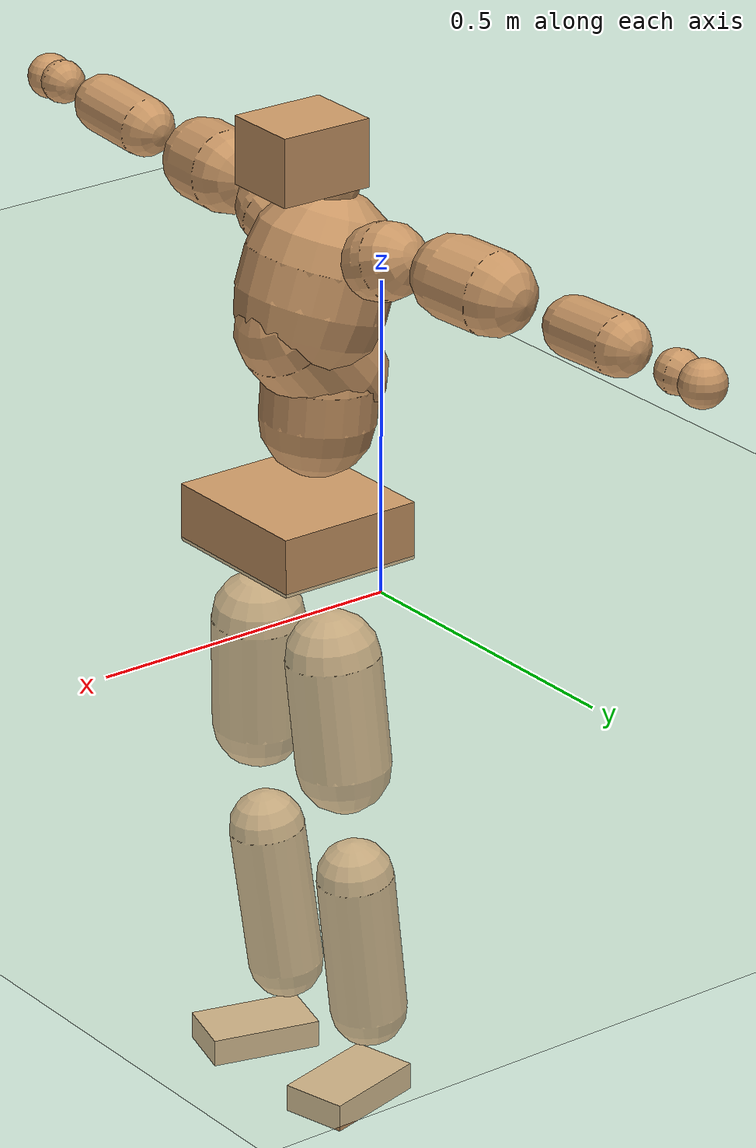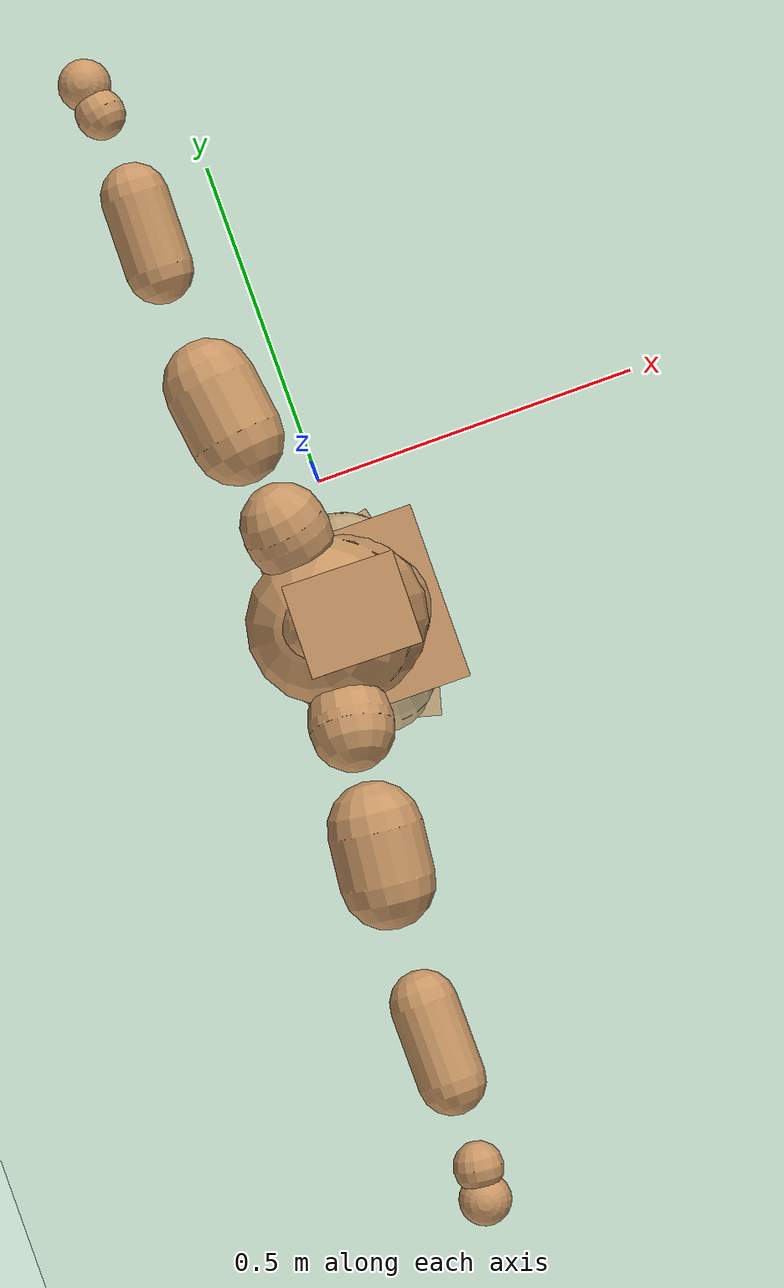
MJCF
<mujoco model="humanoid">
  <compiler coordinate="local" angle="radian"/>
  <default>
    <joint damping="0.0" armature="0.01" stiffness="0.0" limited="true"/>
    <geom conaffinity="1" condim="3" contype="7" margin="0.001" rgba="0.8 0.6 .4 1"/>
  </default>
  <asset>
    <texture type="skybox" builtin="gradient" rgb1=".4 .5 .6" rgb2="0 0 0" width="100" height="100"/>
    <texture builtin="flat" height="1278" mark="cross" markrgb="1 1 1" name="texgeom" random="0.01" rgb1="0.8 0.6 0.4" rgb2="0.8 0.6 0.4" type="cube" width="127"/>
    <texture builtin="checker" height="100" name="texplane" rgb1="0 0 0" rgb2="0.8 0.8 0.8" type="2d" width="100"/>
    <material name="MatPlane" reflectance="0.5" shininess="1" specular="1" texrepeat="60 60" texture="texplane"/>
    <material name="geom" texture="texgeom" texuniform="true"/>
  </asset>
  <worldbody>
    <light cutoff="100" diffuse="1 1 1" dir="-0 0 -1.3" directional="true" exponent="1" pos="0 0 1.3" specular=".1 .1 .1"/>
    <geom conaffinity="1" condim="3" name="floor" pos="0 0 0" rgba="0.8 0.9 0.8 1" size="100 100 .2" type="plane" material="MatPlane"/>
    <body name="Pelvis" pos="0.0002 -0.2171 0.0535">
      <freejoint name="Pelvis"/>
      <geom type="box" contype="1" conaffinity="1" density="5359.375059" pos="-0.0048 0.0000 -0.0142" size="0.1207 0.1347 0.047" quat="1.0000 0.0000 0.0000 -0.0007" name="Pelvis"/>
      <body name="L_Hip" pos="0.0056 0.0879 -0.101">
        <joint name="L_Hip_x" type="hinge" pos="0 0 0" axis="1 0 0" stiffness="1600" damping="160" armature="0.02" range="-180.0000 180.0000"/>
        <joint name="L_Hip_y" type="hinge" pos="0 0 0" axis="0 1 0" stiffness="1600" damping="160" armature="0.02" range="-180.0000 180.0000"/>
        <joint name="L_Hip_z" type="hinge" pos="0 0 0" axis="0 0 1" stiffness="1600" damping="160" armature="0.02" range="-180.0000 180.0000"/>
        <geom type="capsule" contype="1" conaffinity="1" density="2040.816327" size="0.0746" fromto="-0.0066 0.0069 -0.1042 -0.0182 0.0189 -0.2875" name="L_Hip"/>
        <body name="L_Knee" pos="-0.0247 0.0258 -0.3916">
          <joint name="L_Knee_x" type="hinge" pos="0 0 0" axis="1 0 0" stiffness="1600" damping="160" armature="0.02" range="-180.0000 180.0000"/>
          <joint name="L_Knee_y" type="hinge" pos="0 0 0" axis="0 1 0" stiffness="1600" damping="160" armature="0.02" range="-180.0000 180.0000"/>
          <joint name="L_Knee_z" type="hinge" pos="0 0 0" axis="0 0 1" stiffness="1600" damping="160" armature="0.02" range="-180.0000 180.0000"/>
          <geom type="capsule" contype="1" conaffinity="1" density="1234.567901" size="0.061" fromto="-0.0116 -0.0022 -0.0902 -0.0427 -0.0082 -0.3325" name="L_Knee"/>
          <body name="L_Ankle" pos="-0.0543 -0.0104 -0.4226">
            <joint name="L_Ankle_x" type="hinge" pos="0 0 0" axis="1 0 0" stiffness="1600" damping="160" armature="0.02" range="-180.0000 180.0000"/>
            <joint name="L_Ankle_y" type="hinge" pos="0 0 0" axis="0 1 0" stiffness="1600" damping="160" armature="0.02" range="-180.0000 180.0000"/>
            <joint name="L_Ankle_z" type="hinge" pos="0 0 0" axis="0 0 1" stiffness="1600" damping="160" armature="0.02" range="-180.0000 180.0000"/>
            <geom type="box" contype="1" conaffinity="1" density="999.999978" pos="0.0601 0.0152 -0.0303" size="0.0881 0.0531 0.0223" quat="0.9923 0.0000 0.0000 0.1236" name="L_Ankle"/>
            <body name="L_Toe" pos="0.1203 0.0304 -0.0606">
              <joint name="L_Toe_x" type="hinge" pos="0 0 0" axis="1 0 0" stiffness="1000" damping="100" armature="0.02" range="-180.0000 180.0000"/>
              <joint name="L_Toe_y" type="hinge" pos="0 0 0" axis="0 1 0" stiffness="1000" damping="100" armature="0.02" range="-180.0000 180.0000"/>
              <joint name="L_Toe_z" type="hinge" pos="0 0 0" axis="0 0 1" stiffness="1000" damping="100" armature="0.02" range="-180.0000 180.0000"/>
              <geom type="box" contype="1" conaffinity="1" density="8299169.688137" pos="0.0000 0.0000 0.0308" size="0.001 0.0026 0.0011" quat="0.9916 0.0000 0.0000 0.1293" name="L_Toe"/>
            </body>
          </body>
        </body>
      </body>
      <body name="R_Hip" pos="0.0084 -0.0854 -0.1026">
        <joint name="R_Hip_x" type="hinge" pos="0 0 0" axis="1 0 0" stiffness="1600" damping="160" armature="0.02" range="-180.0000 180.0000"/>
        <joint name="R_Hip_y" type="hinge" pos="0 0 0" axis="0 1 0" stiffness="1600" damping="160" armature="0.02" range="-180.0000 180.0000"/>
        <joint name="R_Hip_z" type="hinge" pos="0 0 0" axis="0 0 1" stiffness="1600" damping="160" armature="0.02" range="-180.0000 180.0000"/>
        <geom type="capsule" contype="1" conaffinity="1" density="2040.816327" size="0.0737" fromto="-0.0068 -0.0089 -0.1031 -0.0191 -0.0253 -0.2913" name="R_Hip"/>
        <body name="R_Knee" pos="-0.0259 -0.0342 -0.3943">
          <joint name="R_Knee_x" type="hinge" pos="0 0 0" axis="1 0 0" stiffness="1600" damping="160" armature="0.02" range="-180.0000 180.0000"/>
          <joint name="R_Knee_y" type="hinge" pos="0 0 0" axis="0 1 0" stiffness="1600" damping="160" armature="0.02" range="-180.0000 180.0000"/>
          <joint name="R_Knee_z" type="hinge" pos="0 0 0" axis="0 0 1" stiffness="1600" damping="160" armature="0.02" range="-180.0000 180.0000"/>
          <geom type="capsule" contype="1" conaffinity="1" density="1234.567901" size="0.0606" fromto="-0.0113 0.0025 -0.0898 -0.0419 0.0094 -0.3339" name="R_Knee"/>
          <body name="R_Ankle" pos="-0.0532 0.012 -0.4237">
            <joint name="R_Ankle_x" type="hinge" pos="0 0 0" axis="1 0 0" stiffness="1600" damping="160" armature="0.02" range="-180.0000 180.0000"/>
            <joint name="R_Ankle_y" type="hinge" pos="0 0 0" axis="0 1 0" stiffness="1600" damping="160" armature="0.02" range="-180.0000 180.0000"/>
            <joint name="R_Ankle_z" type="hinge" pos="0 0 0" axis="0 0 1" stiffness="1600" damping="160" armature="0.02" range="-180.0000 180.0000"/>
            <geom type="box" contype="1" conaffinity="1" density="999.999975" pos="0.0624 -0.0167 -0.0262" size="0.0889 0.0517 0.0222" quat="0.9914 0.0000 0.0000 -0.1307" name="R_Ankle"/>
            <body name="R_Toe" pos="0.1248 -0.0335 -0.0524">
              <joint name="R_Toe_x" type="hinge" pos="0 0 0" axis="1 0 0" stiffness="1000" damping="100" armature="0.02" range="-180.0000 180.0000"/>
              <joint name="R_Toe_y" type="hinge" pos="0 0 0" axis="0 1 0" stiffness="1000" damping="100" armature="0.02" range="-180.0000 180.0000"/>
              <joint name="R_Toe_z" type="hinge" pos="0 0 0" axis="0 0 1" stiffness="1000" damping="100" armature="0.02" range="-180.0000 180.0000"/>
              <geom type="box" contype="1" conaffinity="1" density="7840720.332085" pos="0.0000 0.0000 0.0283" size="0.001 0.0025 0.0012" quat="0.9926 0.0000 0.0000 -0.1214" name="R_Toe"/>
            </body>
          </body>
        </body>
      </body>
      <body name="Torso" pos="-0.0431 -0.0025 0.1182">
        <joint name="Torso_x" type="hinge" pos="0 0 0" axis="1 0 0" stiffness="2000" damping="200" armature="0.02" range="-180.0000 180.0000"/>
        <joint name="Torso_y" type="hinge" pos="0 0 0" axis="0 1 0" stiffness="2000" damping="200" armature="0.02" range="-180.0000 180.0000"/>
        <joint name="Torso_z" type="hinge" pos="0 0 0" axis="0 0 1" stiffness="2000" damping="200" armature="0.02" range="-180.0000 180.0000"/>
        <geom type="capsule" contype="1" conaffinity="1" density="2040.816327" size="0.0912" fromto="-0.0068 0.0019 0.0909 -0.0021 0.0006 0.0279" name="Torso"/>
        <body name="Spine" pos="-0.0089 0.0024 0.1188">
          <joint name="Spine_x" type="hinge" pos="0 0 0" axis="1 0 0" stiffness="2000" damping="200" armature="0.02" range="-180.0000 180.0000"/>
          <joint name="Spine_y" type="hinge" pos="0 0 0" axis="0 1 0" stiffness="2000" damping="200" armature="0.02" range="-180.0000 180.0000"/>
          <joint name="Spine_z" type="hinge" pos="0 0 0" axis="0 0 1" stiffness="2000" damping="200" armature="0.02" range="-180.0000 180.0000"/>
          <geom type="capsule" contype="1" conaffinity="1" density="2040.816327" size="0.0898" fromto="0.0572 0.0035 0.0691 -0.0162 -0.0010 -0.0195" name="Spine"/>
          <body name="Chest" pos="0.041 0.0025 0.0496">
            <joint name="Chest_x" type="hinge" pos="0 0 0" axis="1 0 0" stiffness="2000" damping="200" armature="0.02" range="-180.0000 180.0000"/>
            <joint name="Chest_y" type="hinge" pos="0 0 0" axis="0 1 0" stiffness="2000" damping="200" armature="0.02" range="-180.0000 180.0000"/>
            <joint name="Chest_z" type="hinge" pos="0 0 0" axis="0 0 1" stiffness="2000" damping="200" armature="0.02" range="-180.0000 180.0000"/>
            <geom type="capsule" contype="1" conaffinity="1" density="2040.816327" size="0.1179" fromto="-0.0378 0.0003 0.1117 -0.0174 0.0001 0.0513" name="Chest"/>
            <body name="Neck" pos="-0.0703 0.001 0.2229">
              <joint name="Neck_x" type="hinge" pos="0 0 0" axis="1 0 0" stiffness="1000" damping="100" armature="0.02" range="-180.0000 180.0000"/>
              <joint name="Neck_y" type="hinge" pos="0 0 0" axis="0 1 0" stiffness="1000" damping="100" armature="0.02" range="-180.0000 180.0000"/>
              <joint name="Neck_z" type="hinge" pos="0 0 0" axis="0 0 1" stiffness="1000" damping="100" armature="0.02" range="-180.0000 180.0000"/>
              <geom type="capsule" contype="1" conaffinity="1" density="1000" size="0.0448" fromto="0.0302 -0.0019 0.0331 0.0128 -0.0008 0.0140" name="Neck"/>
              <body name="Head" pos="0.043 -0.0027 0.047">
                <joint name="Head_x" type="hinge" pos="0 0 0" axis="1 0 0" stiffness="1000" damping="100" armature="0.02" range="-180.0000 180.0000"/>
                <joint name="Head_y" type="hinge" pos="0 0 0" axis="0 1 0" stiffness="1000" damping="100" armature="0.02" range="-180.0000 180.0000"/>
                <joint name="Head_z" type="hinge" pos="0 0 0" axis="0 0 1" stiffness="1000" damping="100" armature="0.02" range="-180.0000 180.0000"/>
                <geom type="box" contype="1" conaffinity="1" density="2250.000039" pos="0.0225 -0.0004 0.0245" size="0.0765 0.0636 0.0543" quat="1.0000 0.0000 0.0000 -0.0082" name="Head"/>
              </body>
            </body>
            <body name="L_Thorax" pos="-0.0451 0.0909 0.1338">
              <joint name="L_Thorax_x" type="hinge" pos="0 0 0" axis="1 0 0" stiffness="1000" damping="100" armature="0.02" range="-180.0000 180.0000"/>
              <joint name="L_Thorax_y" type="hinge" pos="0 0 0" axis="0 1 0" stiffness="1000" damping="100" armature="0.02" range="-180.0000 180.0000"/>
              <joint name="L_Thorax_z" type="hinge" pos="0 0 0" axis="0 0 1" stiffness="1000" damping="100" armature="0.02" range="-180.0000 180.0000"/>
              <geom type="capsule" contype="1" conaffinity="1" density="1000" size="0.0602" fromto="-0.0089 0.0555 0.0216 -0.0060 0.0378 0.0147" name="L_Thorax"/>
              <body name="L_Shoulder" pos="-0.0149 0.0933 0.0363">
                <joint name="L_Shoulder_x" type="hinge" pos="0 0 0" axis="1 0 0" stiffness="1000" damping="100" armature="0.02" range="-720.0000 720.0000"/>
                <joint name="L_Shoulder_y" type="hinge" pos="0 0 0" axis="0 1 0" stiffness="1000" damping="100" armature="0.02" range="-720.0000 720.0000"/>
                <joint name="L_Shoulder_z" type="hinge" pos="0 0 0" axis="0 0 1" stiffness="1000" damping="100" armature="0.02" range="-720.0000 720.0000"/>
                <geom type="capsule" contype="1" conaffinity="1" density="1000" size="0.0654" fromto="-0.0130 0.0944 -0.0035 -0.0240 0.1746 -0.0066" name="L_Shoulder"/>
                <body name="L_Elbow" pos="-0.0369 0.2691 -0.0101">
                  <joint name="L_Elbow_x" type="hinge" pos="0 0 0" axis="1 0 0" stiffness="1000" damping="100" armature="0.02" range="-720.0000 720.0000"/>
                  <joint name="L_Elbow_y" type="hinge" pos="0 0 0" axis="0 1 0" stiffness="1000" damping="100" armature="0.02" range="-720.0000 720.0000"/>
                  <joint name="L_Elbow_z" type="hinge" pos="0 0 0" axis="0 0 1" stiffness="1000" damping="100" armature="0.02" range="-720.0000 720.0000"/>
                  <geom type="capsule" contype="1" conaffinity="1" density="1000" size="0.0467" fromto="0.0011 0.0766 0.0037 0.0025 0.1819 0.0089" name="L_Elbow"/>
                  <body name="L_Wrist" pos="0.0036 0.2585 0.0126">
                    <joint name="L_Wrist_x" type="hinge" pos="0 0 0" axis="1 0 0" stiffness="600" damping="60" armature="0.02" range="-180.0000 180.0000"/>
                    <joint name="L_Wrist_y" type="hinge" pos="0 0 0" axis="0 1 0" stiffness="600" damping="60" armature="0.02" range="-180.0000 180.0000"/>
                    <joint name="L_Wrist_z" type="hinge" pos="0 0 0" axis="0 0 1" stiffness="600" damping="60" armature="0.02" range="-180.0000 180.0000"/>
                    <geom type="capsule" contype="1" conaffinity="1" density="1000" size="0.0344" fromto="-0.0072 0.0439 -0.0052 -0.0076 0.0459 -0.0054" name="L_Wrist"/>
                    <body name="L_Hand" pos="-0.0148 0.0899 -0.0106">
                      <joint name="L_Hand_x" type="hinge" pos="0 0 0" axis="1 0 0" stiffness="600" damping="60" armature="0.02" range="-180.0000 180.0000"/>
                      <joint name="L_Hand_y" type="hinge" pos="0 0 0" axis="0 1 0" stiffness="600" damping="60" armature="0.02" range="-180.0000 180.0000"/>
                      <joint name="L_Hand_z" type="hinge" pos="0 0 0" axis="0 0 1" stiffness="600" damping="60" armature="0.02" range="-180.0000 180.0000"/>
                      <geom type="sphere" contype="1" conaffinity="1" density="1000" size="0.0364" pos="0.0000 0.0000 0.0000" name="L_Hand"/>
                    </body>
                  </body>
                </body>
              </body>
            </body>
            <body name="R_Thorax" pos="-0.0502 -0.0908 0.1322">
              <joint name="R_Thorax_x" type="hinge" pos="0 0 0" axis="1 0 0" stiffness="1000" damping="100" armature="0.02" range="-180.0000 180.0000"/>
              <joint name="R_Thorax_y" type="hinge" pos="0 0 0" axis="0 1 0" stiffness="1000" damping="100" armature="0.02" range="-180.0000 180.0000"/>
              <joint name="R_Thorax_z" type="hinge" pos="0 0 0" axis="0 0 1" stiffness="1000" damping="100" armature="0.02" range="-180.0000 180.0000"/>
              <geom type="capsule" contype="1" conaffinity="1" density="1000" size="0.0596" fromto="-0.0079 -0.0555 0.0202 -0.0060 -0.0425 0.0155" name="R_Thorax"/>
              <body name="R_Shoulder" pos="-0.0139 -0.098 0.0356">
                <joint name="R_Shoulder_x" type="hinge" pos="0 0 0" axis="1 0 0" stiffness="1000" damping="100" armature="0.02" range="-720.0000 720.0000"/>
                <joint name="R_Shoulder_y" type="hinge" pos="0 0 0" axis="0 1 0" stiffness="1000" damping="100" armature="0.02" range="-720.0000 720.0000"/>
                <joint name="R_Shoulder_z" type="hinge" pos="0 0 0" axis="0 0 1" stiffness="1000" damping="100" armature="0.02" range="-720.0000 720.0000"/>
                <geom type="capsule" contype="1" conaffinity="1" density="1000" size="0.0665" fromto="-0.0102 -0.0959 -0.0046 -0.0181 -0.1695 -0.0081" name="R_Shoulder"/>
                <body name="R_Elbow" pos="-0.0284 -0.2654 -0.0127">
                  <joint name="R_Elbow_x" type="hinge" pos="0 0 0" axis="1 0 0" stiffness="1000" damping="100" armature="0.02" range="-720.0000 720.0000"/>
                  <joint name="R_Elbow_y" type="hinge" pos="0 0 0" axis="0 1 0" stiffness="1000" damping="100" armature="0.02" range="-720.0000 720.0000"/>
                  <joint name="R_Elbow_z" type="hinge" pos="0 0 0" axis="0 0 1" stiffness="1000" damping="100" armature="0.02" range="-720.0000 720.0000"/>
                  <geom type="capsule" contype="1" conaffinity="1" density="1000" size="0.047" fromto="0.0008 -0.0768 0.0049 0.0021 -0.1882 0.0121" name="R_Elbow"/>
                  <body name="R_Wrist" pos="0.0029 -0.265 0.017">
                    <joint name="R_Wrist_x" type="hinge" pos="0 0 0" axis="1 0 0" stiffness="600" damping="60" armature="0.02" range="-180.0000 180.0000"/>
                    <joint name="R_Wrist_y" type="hinge" pos="0 0 0" axis="0 1 0" stiffness="600" damping="60" armature="0.02" range="-180.0000 180.0000"/>
                    <joint name="R_Wrist_z" type="hinge" pos="0 0 0" axis="0 0 1" stiffness="600" damping="60" armature="0.02" range="-180.0000 180.0000"/>
                    <geom type="capsule" contype="1" conaffinity="1" density="1000" size="0.035" fromto="-0.0059 -0.0440 -0.0039 -0.0062 -0.0460 -0.0040" name="R_Wrist"/>
                    <body name="R_Hand" pos="-0.0121 -0.09 -0.0079">
                      <joint name="R_Hand_x" type="hinge" pos="0 0 0" axis="1 0 0" stiffness="600" damping="60" armature="0.02" range="-180.0000 180.0000"/>
                      <joint name="R_Hand_y" type="hinge" pos="0 0 0" axis="0 1 0" stiffness="600" damping="60" armature="0.02" range="-180.0000 180.0000"/>
                      <joint name="R_Hand_z" type="hinge" pos="0 0 0" axis="0 0 1" stiffness="600" damping="60" armature="0.02" range="-180.0000 180.0000"/>
                      <geom type="sphere" contype="1" conaffinity="1" density="1000" size="0.0364" pos="0.0000 0.0000 0.0000" name="R_Hand"/>
                    </body>
                  </body>
                </body>
              </body>
            </body>
          </body>
        </body>
      </body>
    </body>
  </worldbody>
  <actuator>
    <motor name="L_Hip_x" joint="L_Hip_x" gear="500"/>
    <motor name="L_Hip_y" joint="L_Hip_y" gear="500"/>
    <motor name="L_Hip_z" joint="L_Hip_z" gear="500"/>
    <motor name="L_Knee_x" joint="L_Knee_x" gear="500"/>
    <motor name="L_Knee_y" joint="L_Knee_y" gear="500"/>
    <motor name="L_Knee_z" joint="L_Knee_z" gear="500"/>
    <motor name="L_Ankle_x" joint="L_Ankle_x" gear="500"/>
    <motor name="L_Ankle_y" joint="L_Ankle_y" gear="500"/>
    <motor name="L_Ankle_z" joint="L_Ankle_z" gear="500"/>
    <motor name="L_Toe_x" joint="L_Toe_x" gear="500"/>
    <motor name="L_Toe_y" joint="L_Toe_y" gear="500"/>
    <motor name="L_Toe_z" joint="L_Toe_z" gear="500"/>
    <motor name="R_Hip_x" joint="R_Hip_x" gear="500"/>
    <motor name="R_Hip_y" joint="R_Hip_y" gear="500"/>
    <motor name="R_Hip_z" joint="R_Hip_z" gear="500"/>
    <motor name="R_Knee_x" joint="R_Knee_x" gear="500"/>
    <motor name="R_Knee_y" joint="R_Knee_y" gear="500"/>
    <motor name="R_Knee_z" joint="R_Knee_z" gear="500"/>
    <motor name="R_Ankle_x" joint="R_Ankle_x" gear="500"/>
    <motor name="R_Ankle_y" joint="R_Ankle_y" gear="500"/>
    <motor name="R_Ankle_z" joint="R_Ankle_z" gear="500"/>
    <motor name="R_Toe_x" joint="R_Toe_x" gear="500"/>
    <motor name="R_Toe_y" joint="R_Toe_y" gear="500"/>
    <motor name="R_Toe_z" joint="R_Toe_z" gear="500"/>
    <motor name="Torso_x" joint="Torso_x" gear="500"/>
    <motor name="Torso_y" joint="Torso_y" gear="500"/>
    <motor name="Torso_z" joint="Torso_z" gear="500"/>
    <motor name="Spine_x" joint="Spine_x" gear="500"/>
    <motor name="Spine_y" joint="Spine_y" gear="500"/>
    <motor name="Spine_z" joint="Spine_z" gear="500"/>
    <motor name="Chest_x" joint="Chest_x" gear="500"/>
    <motor name="Chest_y" joint="Chest_y" gear="500"/>
    <motor name="Chest_z" joint="Chest_z" gear="500"/>
    <motor name="Neck_x" joint="Neck_x" gear="500"/>
    <motor name="Neck_y" joint="Neck_y" gear="500"/>
    <motor name="Neck_z" joint="Neck_z" gear="500"/>
    <motor name="Head_x" joint="Head_x" gear="500"/>
    <motor name="Head_y" joint="Head_y" gear="500"/>
    <motor name="Head_z" joint="Head_z" gear="500"/>
    <motor name="L_Thorax_x" joint="L_Thorax_x" gear="500"/>
    <motor name="L_Thorax_y" joint="L_Thorax_y" gear="500"/>
    <motor name="L_Thorax_z" joint="L_Thorax_z" gear="500"/>
    <motor name="L_Shoulder_x" joint="L_Shoulder_x" gear="500"/>
    <motor name="L_Shoulder_y" joint="L_Shoulder_y" gear="500"/>
    <motor name="L_Shoulder_z" joint="L_Shoulder_z" gear="500"/>
    <motor name="L_Elbow_x" joint="L_Elbow_x" gear="500"/>
    <motor name="L_Elbow_y" joint="L_Elbow_y" gear="500"/>
    <motor name="L_Elbow_z" joint="L_Elbow_z" gear="500"/>
    <motor name="L_Wrist_x" joint="L_Wrist_x" gear="500"/>
    <motor name="L_Wrist_y" joint="L_Wrist_y" gear="500"/>
    <motor name="L_Wrist_z" joint="L_Wrist_z" gear="500"/>
    <motor name="L_Hand_x" joint="L_Hand_x" gear="500"/>
    <motor name="L_Hand_y" joint="L_Hand_y" gear="500"/>
    <motor name="L_Hand_z" joint="L_Hand_z" gear="500"/>
    <motor name="R_Thorax_x" joint="R_Thorax_x" gear="500"/>
    <motor name="R_Thorax_y" joint="R_Thorax_y" gear="500"/>
    <motor name="R_Thorax_z" joint="R_Thorax_z" gear="500"/>
    <motor name="R_Shoulder_x" joint="R_Shoulder_x" gear="500"/>
    <motor name="R_Shoulder_y" joint="R_Shoulder_y" gear="500"/>
    <motor name="R_Shoulder_z" joint="R_Shoulder_z" gear="500"/>
    <motor name="R_Elbow_x" joint="R_Elbow_x" gear="500"/>
    <motor name="R_Elbow_y" joint="R_Elbow_y" gear="500"/>
    <motor name="R_Elbow_z" joint="R_Elbow_z" gear="500"/>
    <motor name="R_Wrist_x" joint="R_Wrist_x" gear="500"/>
    <motor name="R_Wrist_y" joint="R_Wrist_y" gear="500"/>
    <motor name="R_Wrist_z" joint="R_Wrist_z" gear="500"/>
    <motor name="R_Hand_x" joint="R_Hand_x" gear="500"/>
    <motor name="R_Hand_y" joint="R_Hand_y" gear="500"/>
    <motor name="R_Hand_z" joint="R_Hand_z" gear="500"/>
  </actuator>
  <contact>
    <exclude body1="Torso" body2="Chest"/>
    <exclude body1="Head" body2="Chest"/>
    <exclude body1="R_Knee" body2="R_Toe"/>
    <exclude body1="R_Knee" body2="L_Ankle"/>
    <exclude body1="R_Knee" body2="L_Toe"/>
    <exclude body1="L_Knee" body2="L_Toe"/>
    <exclude body1="L_Knee" body2="R_Ankle"/>
    <exclude body1="L_Knee" body2="R_Toe"/>
    <exclude body1="L_Shoulder" body2="Chest"/>
    <exclude body1="R_Shoulder" body2="Chest"/>
  </contact>
  <sensor/>
  <size njmax="700" nconmax="700"/>
</mujoco>
